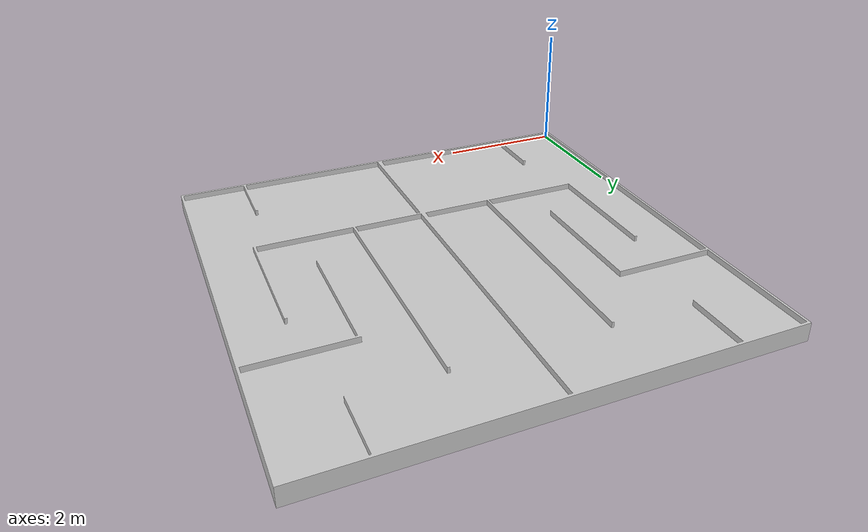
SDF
<?xml version="1.0" ?>

<sdf version="1.6">
  <world name="gazebo_world">

    <physics name="1ms" type="ignored">
      <max_step_size>0.001</max_step_size>
      <real_time_factor>1.0</real_time_factor>
    </physics>
    <plugin
      filename="libignition-gazebo-physics-system.so"
      name="ignition::gazebo::systems::Physics">
    </plugin>
    <plugin
      filename="libignition-gazebo-sensors-system.so"
      name="ignition::gazebo::systems::Sensors">
      <render_engine>ogre2</render_engine>
    </plugin>
    <plugin
      filename="libignition-gazebo-scene-broadcaster-system.so"
      name="ignition::gazebo::systems::SceneBroadcaster">
    </plugin>

    <light name="sun" type="directional">
      <cast_shadows>true</cast_shadows>
      <pose>0 0 10 0 0 0</pose>
      <diffuse>0.8 0.8 0.8 1</diffuse>
      <specular>0.2 0.2 0.2 1</specular>
      <attenuation>
        <range>1000</range>
        <constant>0.9</constant>
        <linear>0.01</linear>
        <quadratic>0.001</quadratic>
      </attenuation>
      <direction>-0.5 0.1 -0.9</direction>
    </light>

    <include>
      <name>field</name>
      <uri>package://gazebo_world/models/my_field</uri>
      <static>true</static>
      <pose>0 0 0 0 0 0</pose>
    </include>
  </world>
</sdf>

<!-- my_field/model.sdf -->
<sdf version="1.6">
  <model name="field">
    <static>true</static>
    <link name="link">
      <collision name="collision">
        <geometry>
          <mesh>
            <scale>1 1 1</scale>
            <uri>meshes/HaruRobo2024field.stl</uri>
          </mesh>
        </geometry>
        <surface>
          <friction>
            <ode>
              <mu>1.2</mu>
              <mu2>1.2</mu2>
            </ode>
          </friction>
        </surface>
      </collision>
      <visual name="visual">
        <geometry>
          <mesh>
            <scale>1 1 1</scale>
            <uri>meshes/HaruRobo2024field.dae</uri>
          </mesh>
        </geometry>
      </visual>
    </link>
  </model>
</sdf>
